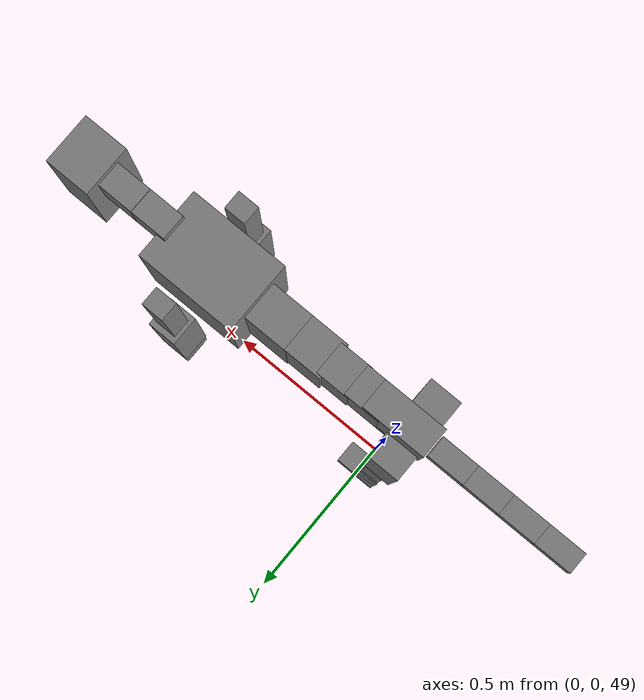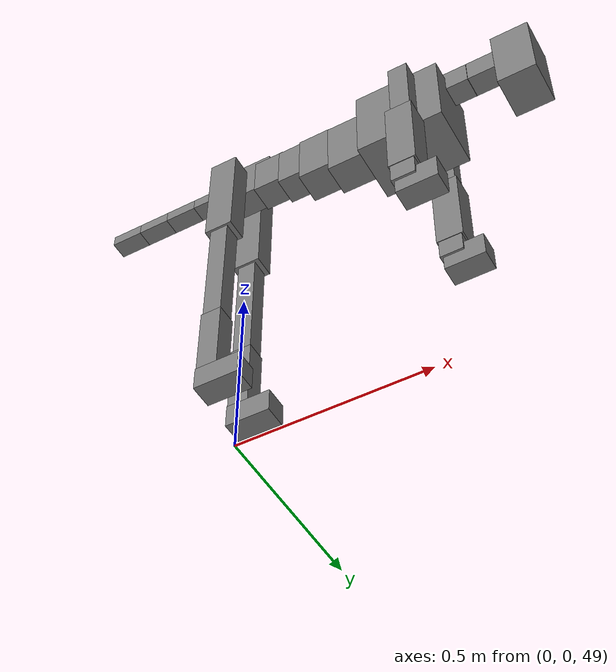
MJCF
<mujoco model="dog">

    <default>
        <joint armature="0.02" stiffness="1" damping="0.2" limited="true"/>
        <geom condim="3" friction="1 0.05 0.05" margin="0.01"/>
        <motor ctrllimited="true" ctrlrange="-1.0 1.0" forcelimited="true" gear="50"/>
    </default>

    <compiler inertiafromgeom="true" angle="radian"/>

    <option timestep="0.016" iterations="50" tolerance="1e-10" solver="Newton" jacobian="dense" cone="pyramidal"/>

    <size nconmax="20000" njmax="60000" nstack="5000000"/>
    <visual>
        <map force="0.1" zfar="30"/>
        <rgba haze="0.15 0.25 0.35 1"/>
        <quality shadowsize="2048"/>
        <global offwidth="800" offheight="800"/>
    </visual>

    <asset>
        <texture type="skybox" builtin="gradient" rgb1="0.3 0.5 0.7" rgb2="0 0 0" width="512" height="512"/>
        <texture name="texplane" type="2d" builtin="checker" rgb1=".2 .3 .4" rgb2=".1 0.15 0.2" width="512" height="512"
                 mark="cross" markrgb=".8 .8 .8"/>
        <texture name="texgeom" type="cube" builtin="flat" mark="cross" width="127" height="1278" rgb1="0.8 0.6 0.4"
                 rgb2="0.8 0.6 0.4" markrgb="1 1 1" random="0.01"/>

        <material name="matplane" reflectance="0.3" texture="texplane" texrepeat="1 1" texuniform="true"/>
        <material name="matgeom" texture="texgeom" texuniform="true" rgba="0.8 0.6 .4 1"/>
    </asset>

    <worldbody>
        <geom name="floor" pos="0 0 0" size="0 0 .25" type="plane" material="matplane" condim="3"/>

        <light directional="false" diffuse=".2 .2 .2" specular="0 0 0" pos="0 0 5" dir="0 0 -1" castshadow="false"/>
        <light mode="targetbodycom" target="torso" directional="false" diffuse=".8 .8 .8" specular="0.3 0.3 0.3"
               pos="0 0 4.0" dir="0 0 -1"/>

        <body name="root" pos="0 0 50">
            <freejoint name="root_1"/>
            <geom type="box" pos="0 0 -0.02" size="0.0774  0.0358  0.063" density="2030"/>

            <body name="spine1" pos="0.054 0 0">
                <joint name="spine1_y" axis="0 1 0" range="0 0.7" limited="true"/>
                <geom type="box" pos="0.02375 0 -0.03" size="0.04375  0.0375  0.05985" density="2030"/>

                <body name="spine2" pos="0.0612 0 0">
                    <joint name="spine2_y" axis="0 1 0" range="-0.15 0.15" limited="true"/>
                    <geom type="box" pos="0.03555  0  -0.04" size="0.04055  0.039  0.06615" density="2030"/>

                    <body name="spine3" pos="0.0730 0 0">
                        <joint name="spine3_y" axis="0 1 0" range="-0.15 0.15" limited="true"/>
                        <geom type="box" pos="0.03555  0  -0.057" size="0.04555  0.0445  0.081" density="2030"/>

                        <body name="spine4" pos="0.0780 0 0">
                            <joint name="spine4_y" axis="0 1 0" range="-0.15 0.15" limited="true"/>
                            <geom type="box" pos="0.05265  0  -0.07" size="0.05265  0.045  0.09135" density="2030"/>

                            <body name="torso" pos="0.1082 0 0">
                                <joint name="torso_y" axis="0 1 0" range="-0.15 0.15" limited="true"/>
                                <geom type="box" pos="0.11925  0  -0.085" size="0.11925  0.085  0.11745"
                                      density="2030"/>

                                <body name="neck1" pos="0.2160  0   0.0180">
                                    <joint name="neck1_y" axis="0 1 0" range="-1.2  -1" limited="true"/>
                                    <geom type="box" pos="0.0423  0  0" size="0.0423  0.03  0.036" density="2325"/>

                                    <body name="neck2" pos="0.0853  0  0">
                                        <joint name="neck2_y" axis="0 1 0" range="0.1  0" limited="true"/>
                                        <geom type="box" pos="0.0423  0  0" size="0.0423  0.03  0.036" density="2325"/>

                                        <body name="head" pos="0.0853  0  0">
                                            <joint name="head_y" axis="0 1 0" range="-0.3  -0.2" limited="true"/>
                                            <geom type="box" pos="0.0531  0  -0.055" size="0.0531  0.06  0.1044"
                                                  density="4030"/>

                                        </body>
                                    </body>
                                </body>

                                <body name="front_shoulder" pos="0.156  0   -0.0480">
                                    <joint name="front_shoulder_y" axis="0 1 0" range="-1 1.5" limited="true"/>
                                    <geom type="box" pos="0 0.13 -0.0888" size="0.0268  0.0229  0.1154" density="1158"/>
                                    <geom type="box" pos="0 -0.13 -0.0888" size="0.0268  0.0229  0.1154"
                                          density="1158"/>

                                    <body name="front_elbow" pos="0  0  -0.1776">
                                        <joint name="front_elbow_y" axis="0 1 0" range="-2 0" limited="true"/>
                                        <geom type="box" pos="0 0.13 -0.1182" size="0.0363  0.0372  0.1182"
                                              density="1081"/>
                                        <geom type="box" pos="0 -0.13 -0.1182" size="0.0363  0.0372  0.1182"
                                              density="1081"/>

                                        <body name="front_wrist" pos="0  0  -0.2364">
                                            <joint name="front_wrist_y" axis="0 1 0" range="-0.2 0" limited="true"/>
                                            <geom type="box" pos="0 0.13 -0.0224" size="0.0320  0.0356  0.0355"
                                                  density="1664"/>
                                            <geom type="box" pos="0 -0.13 -0.0224" size="0.0320  0.0356  0.0355"
                                                  density="1664"/>

                                            <body name="front_finger_end" pos="0  0  -0.0448">
                                                <joint name="front_finger_y" axis="0 1 0" range="-0.4 1"
                                                       limited="true"/>
                                                <geom type="box" pos="0.0300  0.13  -0.0204"
                                                      size="0.0551  0.0300  0.0354" density="1515"/>
                                                <geom type="box" pos="0.0300  -0.13  -0.0204"
                                                      size="0.0551  0.0300  0.0354" density="1515"/>

                                            </body>

                                        </body>
                                    </body>
                                </body>

                            </body>
                        </body>
                    </body>
                </body>
            </body>

            <body name="back_hip" pos="-0.03 0 -0.018">
                <joint name="back_hip_y" axis="0 1 0" range="-1.5 0.3" limited="true"/>
                <geom type="box" pos="0 0.07 -0.1232" size="0.0389  0.0305  0.1460" density="1154"/>
                <geom type="box" pos="0 -0.07 -0.1232" size="0.0389  0.0305  0.1460" density="1154"/>

                <body name="back_knee" pos="0  0  -0.2464">
                    <joint name="back_knee_y" axis="0 1 0" range="0 2.8" limited="true"/>
                    <geom type="box" pos="0 0.07 -0.1818" size="0.0252  0.0249  0.1973" density="1227"/>
                    <geom type="box" pos="0 -0.07 -0.1818" size="0.0252  0.0249  0.1973" density="1227"/>

                    <body name="back_ankle" pos="0  0  -0.3636">
                        <joint name="back_ankle_y" axis="0 1 0" range="-2.2 0" limited="true"/>
                        <geom type="box" pos="0 0.07 -0.0998" size="0.0278  0.0278  0.1111" density="1284"/>
                        <geom type="box" pos="0 -0.07 -0.0998" size="0.0278  0.0278  0.1111" density="1284"/>

                        <body name="back_toe_end" pos="0  0  -0.1996">
                            <joint name="back_toe_y" axis="0 1 0" range="-0.4 1" limited="true"/>
                            <geom type="box" pos="0.0322  0.07  -0.0171" size="0.0590  0.0322  0.0321" density="1515"/>
                            <geom type="box" pos="0.0322  -0.07  -0.0171" size="0.0590  0.0322  0.0321" density="1515"/>

                        </body>
                    </body>
                </body>
            </body>

            <body name="tail1" pos="-0.074 0 -0.006">
                <joint name="tail1_y" axis="0 1 0" range="-0.2 0.2" limited="true"/>
                <geom type="box" pos="-0.0536  0  0" size="0.045  0.025  0.0175" density="1587"/>

                <body name="tail2" pos="-0.09 0 0">
                    <joint name="tail2_y" axis="0 1 0" range="-0.2 0.2" limited="true"/>
                    <geom type="box" pos="-0.0536  0  0" size="0.045  0.025  0.0175" density="1587"/>

                    <body name="tail3" pos="-0.09 0 0">
                        <joint name="tail3_y" axis="0 1 0" range="-0.2 0.2" limited="true"/>
                        <geom type="box" pos="-0.0536  0  0" size="0.045  0.025  0.0175" density="1587"/>

                        <body name="tail4" pos="-0.09 0 0">
                            <joint name="tail4_y" axis="0 1 0" range="-0.2 0.2" limited="true"/>
                            <geom type="box" pos="-0.0536  0  0" size="0.045  0.025  0.0175" density="1587"/>

                        </body>
                    </body>
                </body>
            </body>
        </body>
    </worldbody>

    <actuator>
        <motor joint="spine1_y" forcerange="-150 150     "/>
        <motor joint="spine2_y" forcerange="-150 150     "/>
        <motor joint="spine3_y" forcerange="-150 150     "/>
        <motor joint="spine4_y" forcerange="-150 150     "/>
        <motor joint="torso_y" forcerange="-150 150     "/>
        <motor joint="neck1_y" forcerange="-100 100       "/>
        <motor joint="neck2_y" forcerange="-100 100       "/>
        <motor joint="head_y" forcerange="-150 150       "/>
        <motor joint="front_shoulder_y" forcerange="-105.05 147.72"/>
        <motor joint="front_elbow_y" forcerange="-179.70 190.49"/>
        <motor joint="front_wrist_y" forcerange="-145.36 139.12"/>
        <motor joint="front_finger_y" forcerange="-70.26 49.98"/>
        <motor joint="back_hip_y" forcerange="-398.34 208.55"/>
        <motor joint="back_knee_y" forcerange="-241.07 320.89"/>
        <motor joint="back_angle_y" forcerange="-132.18 212.97"/>
        <motor joint="back_toe_y" forcerange="-90.18 87.10"/>
        <motor joint="tail1_y" forcerange="-50 50     "/>
        <motor joint="tail2_y" forcerange="-50 50     "/>
        <motor joint="tail3_y" forcerange="-50 50     "/>
        <motor joint="tail4_y" forcerange="-50 50     "/>
    </actuator>
</mujoco>
